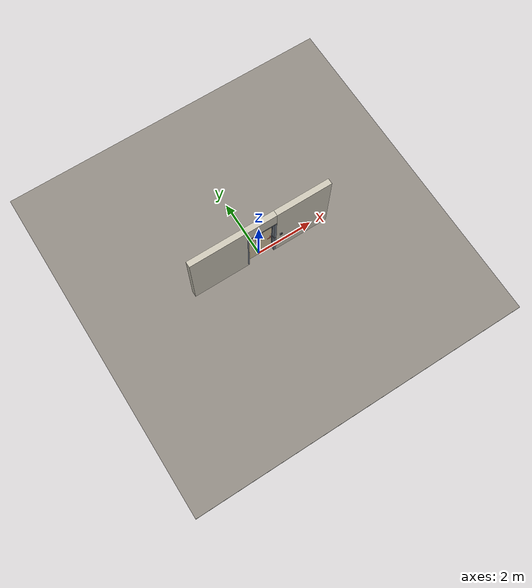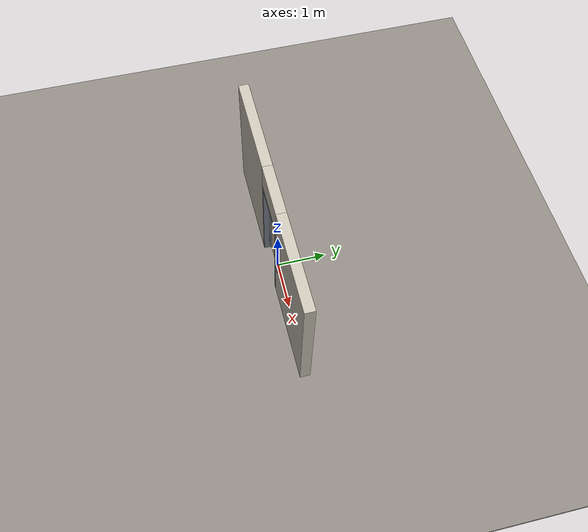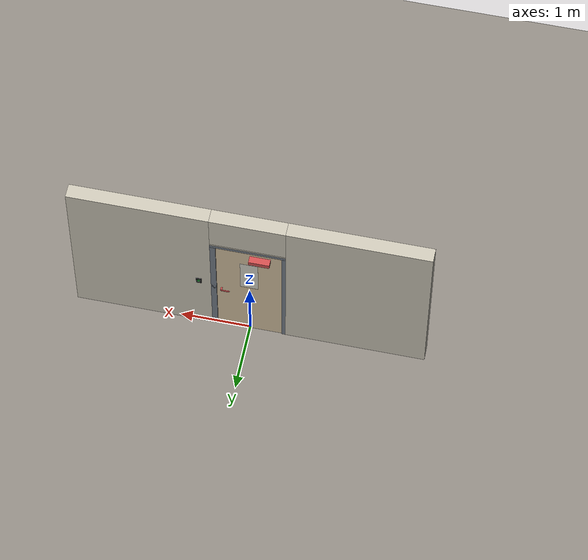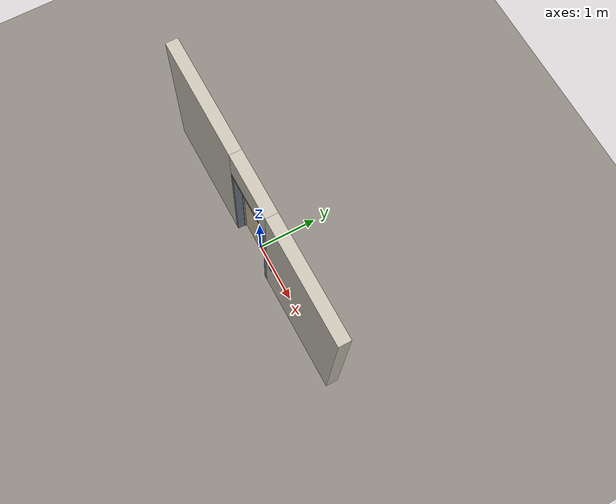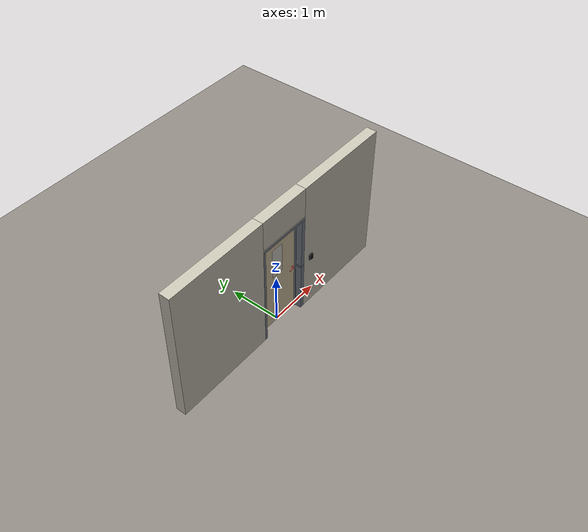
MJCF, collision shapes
<?xml version="1.0" ?>
<mujoco model="db0189_swing_single_simple">
  <compiler angle="radian" meshdir="../../hardware" texturedir="../../textures" autolimits="true" inertiafromgeom="false"/>
  <option timestep="0.002" integrator="implicitfast" cone="elliptic" impratio="10" noslip_iterations="3">
    <flag multiccd="enable"/>
  </option>
  <size memory="16M"/>
  <default>
    <geom condim="4" solref="0.005 1" solimp="0.95 0.99 0.001"/>
    <joint solreflimit="0.005 1" solimplimit="0.95 0.99 0.001"/>
    <tendon solreflimit="0.005 1"/>
    <equality solref="0.002 1"/>
  </default>
  <visual>
    <headlight ambient="0.4 0.4 0.4" diffuse="0.7 0.7 0.7" specular="0.2 0.2 0.2"/>
    <quality shadowsize="4096"/>
    <map znear="0.01" zfar="60"/>
  </visual>
  <asset>
    <mesh name="closer_body_fdc4667657" file="closer_body_fdc4667657.obj"/>
    <mesh name="hinge_e22b26c0c1" file="hinge_e22b26c0c1.obj"/>
    <mesh name="hinge_jamb_e1d088f8dc" file="hinge_jamb_e1d088f8dc.obj"/>
    <mesh name="lever_6268dcb28c" file="lever_6268dcb28c.obj"/>
    <material name="mat_floor" rgba="0.55 0.53 0.5 1" specular="0.2" shininess="0.15" reflectance="0"/>
    <material name="mat_wall" rgba="0.78 0.76 0.7 1" specular="0.2" shininess="0.1" reflectance="0"/>
    <material name="mat_leaf" rgba="0.82 0.75 0.62 1" specular="0.23" shininess="0.32" reflectance="0.02"/>
    <material name="mat_glass" rgba="0.9 0.93 0.95 0.6" specular="0.2" shininess="0.5" reflectance="0.1"/>
    <material name="mat_hinge" rgba="0.65 0.66 0.68 1" specular="0.74" shininess="0.5" reflectance="0.36"/>
    <material name="mat_op_stainless" rgba="0.75 0.76 0.77 1" specular="0.8" shininess="0.65" reflectance="0.4"/>
    <material name="mat_trim" rgba="0.85 0.66 0.3 1" specular="0.8" shininess="0.75" reflectance="0.4"/>
    <material name="mat_bolt" rgba="0.85 0.66 0.3 1" specular="0.8" shininess="0.75" reflectance="0.4"/>
    <material name="mat_maglock" rgba="0.22 0.17 0.13 1" specular="0.8" shininess="0.6" reflectance="0.4"/>
    <material name="mat_frame" rgba="0.45 0.48 0.52 1" specular="0.32" shininess="0.6" reflectance="0.08"/>
    <material name="mat_seal" rgba="0.1 0.1 0.1 1" specular="0.2" shininess="0.1" reflectance="0"/>
    <material name="mat_closer" rgba="0.22 0.17 0.13 1" specular="0.8" shininess="0.6" reflectance="0.4"/>
    <material name="mat_placard" rgba="0.95 0.75 0.05 1" specular="0.2" shininess="0.5" reflectance="0"/>
    <material name="mat_wallreader" rgba="0.05 0.05 0.05 1" specular="0.38" shininess="0.3" reflectance="0.12"/>
    <material name="mat_rex" rgba="0.1 0.6 0.2 1" specular="0.2" shininess="0.6" reflectance="0"/>
    <texture name="skybox" type="skybox" builtin="gradient" rgb1="0.6 0.7 0.85" rgb2="0.9 0.92 0.95" width="256" height="256"/>
  </asset>
  <worldbody>
    <light name="sun" pos="1.5 -2.5 4" dir="-0.3 0.5 -0.8" directional="true" diffuse="0.8 0.8 0.8" specular="0.3 0.3 0.3" castshadow="true"/>
    <light name="fill" pos="-1.5 2.5 3" dir="0.3 -0.5 -0.7" directional="true" diffuse="0.35 0.35 0.4" castshadow="false"/>
    <camera name="robot_view" pos="0 -2.613187 1.734312" xyaxes="1 0 0 0 0.26963 0.962964" fovy="52"/>
    <camera name="far_view" pos="0 2.471187 1.734312" xyaxes="-1 0 0 0 -0.26963 0.962964" fovy="52"/>
    <camera name="iso" pos="1.932062 -2.206438 2.141063" xyaxes="0.741536 0.670913 0 -0.242917 0.268487 0.932151" fovy="46"/>
    <camera name="detail_handle" pos="0.4705 -0.877 1.296" xyaxes="0.97561 0.219512 0 -0.070934 0.315262 0.94635" fovy="38"/>
    <geom name="floor" type="box" size="6 6 0.05" pos="0 0 -0.05" material="mat_floor" group="0" contype="1" conaffinity="1" friction="0.8 0.005 0.0001" density="2400"/>
    <geom name="wall_left" type="box" size="0.99475 0.1 1.35" pos="-1.50525 -0.071 1.35" material="mat_wall" group="0" contype="1" conaffinity="1" friction="0.6 0.005 0.0001" density="800"/>
    <geom name="wall_right" type="box" size="0.97975 0.1 1.35" pos="1.52025 -0.071 1.35" material="mat_wall" group="0" contype="1" conaffinity="1" friction="0.6 0.005 0.0001" density="800"/>
    <geom name="wall_header" type="box" size="0.5255 0.1 0.2875" pos="0.015 -0.071 2.4125" material="mat_wall" group="0" contype="1" conaffinity="1" friction="0.6 0.005 0.0001" density="800"/>
    <geom name="hinge_0_jamb" type="mesh" mesh="hinge_jamb_e1d088f8dc" pos="-0.4575 0.029 0.259" quat="0 1 0 0" material="mat_hinge" group="1" contype="0" conaffinity="0" density="7850"/>
    <geom name="hinge_1_jamb" type="mesh" mesh="hinge_jamb_e1d088f8dc" pos="-0.4575 0.029 1.025" quat="0 1 0 0" material="mat_hinge" group="1" contype="0" conaffinity="0" density="7850"/>
    <geom name="hinge_2_jamb" type="mesh" mesh="hinge_jamb_e1d088f8dc" pos="-0.4575 0.029 1.861" quat="0 1 0 0" material="mat_hinge" group="1" contype="0" conaffinity="0" density="7850"/>
    <geom name="leaf_maglock_body" type="box" size="0.125 0.025 0.02" pos="0.1565 -0.057 1.98" material="mat_maglock" group="0" contype="1" conaffinity="1" friction="0.6 0.005 0.0001" density="2000"/>
    <geom name="leaf_maglock_bracket" type="box" size="0.09 0.025 0.0225" pos="0.1565 -0.057 2.0225" material="mat_maglock" group="1" contype="0" conaffinity="0" density="7850"/>
    <geom name="jamb_hinge" type="box" size="0.025 0.1 1.0225" pos="-0.4855 -0.071 1.0225" material="mat_frame" group="0" contype="1" conaffinity="1" friction="0.6 0.005 0.0001" density="300"/>
    <geom name="strike_1016_wall_n" type="box" size="0.04 0.08075 0.0183" pos="0.5005 -0.09025 1.016" material="mat_frame" group="0" contype="1" conaffinity="1" friction="0.6 0.005 0.0001" density="300"/>
    <geom name="strike_1016_wall_p" type="box" size="0.04 0.008 0.0183" pos="0.5005 0.0175 1.016" material="mat_frame" group="0" contype="1" conaffinity="1" friction="0.6 0.005 0.0001" density="300"/>
    <geom name="strike_1016_ramp" type="box" size="0.04 0.018028 0.0183" pos="0.503782 0.018312 1.016" quat="0.957092 0 0 -0.289784" material="mat_frame" group="0" contype="1" conaffinity="1" friction="0.12 0.005 0.0001" density="300"/>
    <geom name="strike_1016_back" type="box" size="0.0285 0.0095 0.0183" pos="0.512 0 1.016" material="mat_frame" group="0" contype="1" conaffinity="1" friction="0.6 0.005 0.0001" density="300"/>
    <geom name="jamb_strike_0" type="box" size="0.04 0.1 0.49885" pos="0.5005 -0.071 0.49885" material="mat_frame" group="0" contype="1" conaffinity="1" friction="0.6 0.005 0.0001" density="300"/>
    <geom name="jamb_strike_1" type="box" size="0.04 0.1 0.50535" pos="0.5005 -0.071 1.53965" material="mat_frame" group="0" contype="1" conaffinity="1" friction="0.6 0.005 0.0001" density="300"/>
    <geom name="jamb_head" type="box" size="0.5255 0.1 0.025" pos="0.015 -0.071 2.07" material="mat_frame" group="0" contype="1" conaffinity="1" friction="0.6 0.005 0.0001" density="300"/>
    <geom name="head_stud" type="box" size="0.5255 0.1 0.015" pos="0.015 -0.071 2.11" material="mat_wall" group="0" contype="1" conaffinity="1" friction="0.6 0.005 0.0001" density="500"/>
    <geom name="stop_hinge" type="box" size="0.0055 0.016 1.0225" pos="-0.455 -0.0385 1.0225" material="mat_frame" group="0" contype="1" conaffinity="1" friction="0.6 0.005 0.0001" density="300"/>
    <geom name="stop_strike" type="box" size="0.0055 0.016 1.0225" pos="0.455 -0.0385 1.0225" material="mat_frame" group="0" contype="1" conaffinity="1" friction="0.6 0.005 0.0001" density="300"/>
    <geom name="stop_head" type="box" size="0.4605 0.016 0.0055" pos="0 -0.0385 2.0395" material="mat_frame" group="0" contype="1" conaffinity="1" friction="0.6 0.005 0.0001" density="300"/>
    <geom name="seal_hinge" type="box" size="0.004 0.002 1.0225" pos="-0.4575 -0.024 1.0225" material="mat_seal" group="1" contype="0" conaffinity="0" density="1100"/>
    <geom name="seal_strike" type="box" size="0.004 0.002 1.0225" pos="0.4575 -0.024 1.0225" material="mat_seal" group="1" contype="0" conaffinity="0" density="1100"/>
    <geom name="seal_head" type="box" size="0.4405 0.002 0.008" pos="0 -0.024 2.033" material="mat_seal" group="1" contype="0" conaffinity="0" density="1100"/>
    <geom name="wall_reader" type="box" size="0.04 0.015 0.06" pos="0.7105 -0.186 1.1" material="mat_wallreader" group="0" contype="1" conaffinity="1" friction="0.6 0.005 0.0001" density="1000"/>
    <geom name="rex_plate" type="box" size="0.04 0.003 0.06" pos="0.7105 0.032 1.1" material="mat_wallreader" group="1" contype="0" conaffinity="0" density="1000"/>
    <site name="approach_point" pos="0 -1.5 0" quat="1 0 0 0" size="0.05" rgba="0.2 0.9 0.2 0.5" group="4"/>
    <site name="goal_point" pos="0 1.5 0" quat="1 0 0 0" size="0.05" rgba="0.2 0.9 0.2 0.5" group="4"/>
    <site name="door_plane_center" pos="0 0 1.0225" quat="1 0 0 0" size="0.02" rgba="0.2 0.9 0.2 0.5" group="4"/>
    <body name="rex_button" pos="0.7105 0.035 1.1">
      <inertial pos="0 0.004 0" mass="0.010053" quat="0 0 0.707107 -0.707107" diaginertia="0.000001059 0.000001059 0.000002011"/>
      <joint name="rex_button_slide" type="slide" axis="0 -1 0" limited="true" range="0 0.004" damping="1" stiffness="1500" springref="-0.004" armature="0.1"/>
      <geom name="rex_button_geom" type="cylinder" size="0.02 0.004" pos="0 0.004 0" quat="0.707107 -0.707107 0 0" material="mat_rex" group="0" contype="1" conaffinity="1" friction="0.6 0.005 0.0001" density="1000"/>
    </body>
    <body name="leaf" pos="-0.4605 0 0">
      <inertial pos="0.414948 0.018389 1.271954" mass="51.623609" quat="-0.468455 0.495536 0.517917 0.516484" diaginertia="3.029001774 21.923968973 24.856658805"/>
      <joint name="leaf_hinge" type="hinge" axis="0 0 1" pos="0.003 0.029 0" limited="true" range="0 1.570796" solreflimit="0.02 1" damping="12.25611" frictionloss="1.106969" stiffness="12.827888" springref="-1.543512" armature="0.02"/>
      <geom name="leaf_slab" type="box" size="0.457 0.022 1.016" pos="0.46 0 1.025" material="mat_leaf" group="0" contype="1" conaffinity="1" friction="0.4 0.005 0.0001" density="1"/>
      <geom name="leaf_glass_0" type="box" size="0.125 0.0228 0.3048" pos="0.46 0 1.4314" material="mat_glass" group="1" contype="0" conaffinity="0" density="1"/>
      <geom name="hinge_0" type="mesh" mesh="hinge_e22b26c0c1" pos="0.003 0.029 0.259" quat="0 1 0 0" material="mat_hinge" group="1" contype="0" conaffinity="0" density="7850"/>
      <geom name="hinge_1" type="mesh" mesh="hinge_e22b26c0c1" pos="0.003 0.029 1.025" quat="0 1 0 0" material="mat_hinge" group="1" contype="0" conaffinity="0" density="7850"/>
      <geom name="hinge_2" type="mesh" mesh="hinge_e22b26c0c1" pos="0.003 0.029 1.861" quat="0 1 0 0" material="mat_hinge" group="1" contype="0" conaffinity="0" density="7850"/>
      <geom name="leaf_latch_bolt_faceplate" type="box" size="0.0006 0.014 0.0283" pos="0.9164 0 1.016" material="mat_bolt" group="1" contype="0" conaffinity="0" density="8500"/>
      <geom name="leaf_maglock_armature" type="box" size="0.09 0.005 0.02" pos="0.617 -0.027 1.98" material="mat_maglock" group="1" contype="0" conaffinity="0" density="7800"/>
      <geom name="closer_body" type="mesh" mesh="closer_body_fdc4667657" pos="0.3 0.022 1.952" quat="-0.707107 0.707107 0 0" material="mat_closer" group="1" contype="0" conaffinity="0" density="2000"/>
      <geom name="closer_body_col" type="box" size="0.145 0.05 0.035" pos="0.3 0.072 1.952" material="mat_closer" group="3" contype="1" conaffinity="1" rgba="0.8 0.3 0.3 0.25" friction="0.6 0.005 0.0001" density="2000"/>
      <site name="leaf_edge_mid" pos="0.917 0 1.016" quat="1 0 0 0" size="0.02" rgba="0.2 0.9 0.2 0.5" group="4"/>
      <body name="leaf_handle" pos="0.847 0 1.016">
        <inertial pos="-0.03705 0 0" mass="0.984967" quat="0 0.707107 0.707107 0" diaginertia="0.002278035 0.00380889 0.005520856"/>
        <joint name="leaf_handle_hinge" type="hinge" axis="0 -1 0" limited="true" range="0 0.96" damping="0.255791" frictionloss="0.05" stiffness="1.2" springref="-0.583333" armature="0.01"/>
        <geom name="leaf_handle_lever_n" type="mesh" mesh="lever_6268dcb28c" pos="0 -0.022 0" quat="0.707107 0.707107 0 0" material="mat_op_stainless" group="1" contype="0" conaffinity="0" density="3000"/>
        <geom name="leaf_handle_lever_col_n" type="capsule" size="0.0095 0.0505" pos="-0.06 -0.077 0" quat="0.707107 0 -0.707107 0" material="mat_op_stainless" group="3" contype="1" conaffinity="1" rgba="0.8 0.3 0.3 0.25" friction="0.7 0.01 0.0001" density="3000"/>
        <geom name="leaf_handle_hub_col_n" type="cylinder" size="0.012 0.022" pos="0 -0.052 0" quat="0.707107 -0.707107 0 0" material="mat_op_stainless" group="3" contype="1" conaffinity="1" rgba="0.8 0.3 0.3 0.25" friction="0.6 0.005 0.0001" density="3000"/>
        <geom name="leaf_handle_lever_p" type="mesh" mesh="lever_6268dcb28c" pos="0 0.022 0" quat="-0.707107 0.707107 0 0" material="mat_op_stainless" group="1" contype="0" conaffinity="0" density="3000"/>
        <geom name="leaf_handle_lever_col_p" type="capsule" size="0.0095 0.0505" pos="-0.06 0.077 0" quat="0.707107 0 -0.707107 0" material="mat_op_stainless" group="3" contype="1" conaffinity="1" rgba="0.8 0.3 0.3 0.25" friction="0.7 0.01 0.0001" density="3000"/>
        <geom name="leaf_handle_hub_col_p" type="cylinder" size="0.012 0.022" pos="0 0.052 0" quat="0.707107 -0.707107 0 0" material="mat_op_stainless" group="3" contype="1" conaffinity="1" rgba="0.8 0.3 0.3 0.25" friction="0.6 0.005 0.0001" density="3000"/>
        <site name="leaf_handle_grip_n" pos="-0.096 -0.077 0" quat="1 0 0 0" size="0.012" rgba="0.2 0.9 0.2 0.5" group="4"/>
        <site name="leaf_handle_grip_p" pos="-0.096 0.077 0" quat="1 0 0 0" size="0.012" rgba="0.2 0.9 0.2 0.5" group="4"/>
      </body>
      <body name="leaf_latch_bolt" pos="0.917 0 1.016">
        <inertial pos="-0.0055 0 0" mass="0.074627" quat="0.92388 -0.382683 0 0" diaginertia="0.000002271 0.000013255 0.000013255"/>
        <joint name="leaf_latch_bolt_slide" type="slide" axis="-1 0 0" limited="true" range="0 0.019" damping="2" frictionloss="0.3" stiffness="600" springref="-0.01" armature="0.1"/>
        <geom name="leaf_latch_bolt_capsule" type="capsule" size="0.008 0.0165" pos="-0.0055 0 0" quat="0.707107 0 0.707107 0" material="mat_bolt" group="0" contype="1" conaffinity="1" friction="0.2 0.005 0.0001" density="8500"/>
      </body>
    </body>
  </worldbody>
  <tendon>
    <fixed name="leaf_latch_bolt_coupling" limited="true" range="0 10">
      <joint joint="leaf_latch_bolt_slide" coef="1"/>
      <joint joint="leaf_handle_hinge" coef="-0.020879"/>
    </fixed>
  </tendon>
  <equality>
    <weld name="leaf_maglock" body1="leaf" body2="world" active="true"/>
  </equality>
  <sensor>
    <jointpos name="leaf_hinge_pos" joint="leaf_hinge"/>
    <jointvel name="leaf_hinge_vel" joint="leaf_hinge"/>
    <jointpos name="leaf_handle_hinge_pos" joint="leaf_handle_hinge"/>
    <jointvel name="leaf_handle_hinge_vel" joint="leaf_handle_hinge"/>
    <jointpos name="leaf_latch_bolt_slide_pos" joint="leaf_latch_bolt_slide"/>
    <jointvel name="leaf_latch_bolt_slide_vel" joint="leaf_latch_bolt_slide"/>
    <jointpos name="rex_button_slide_pos" joint="rex_button_slide"/>
    <jointvel name="rex_button_slide_vel" joint="rex_button_slide"/>
  </sensor>
</mujoco>
